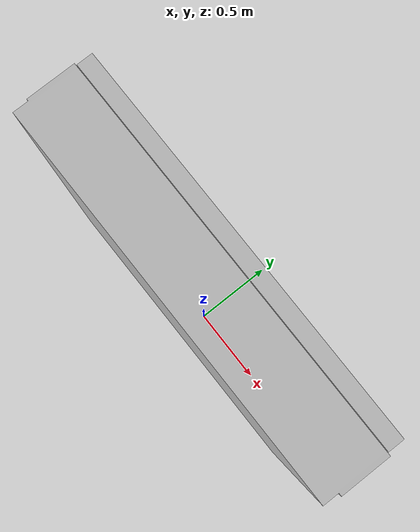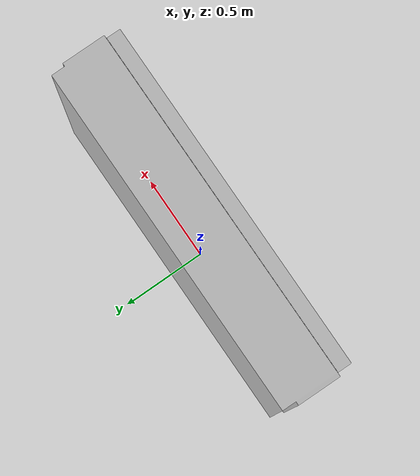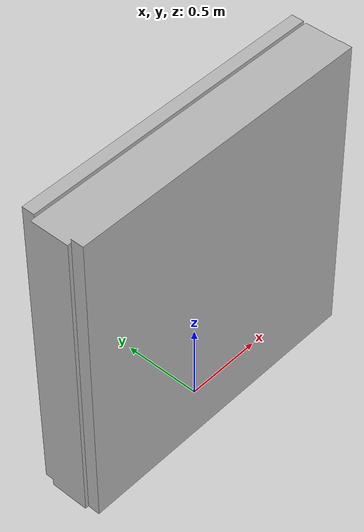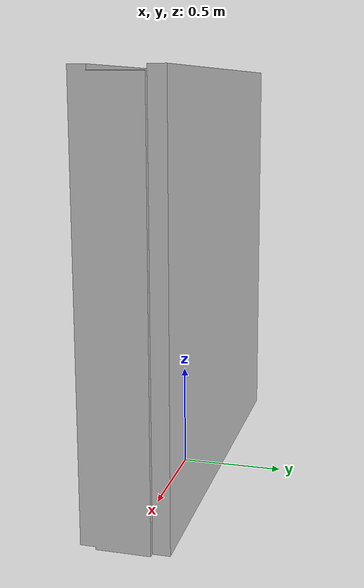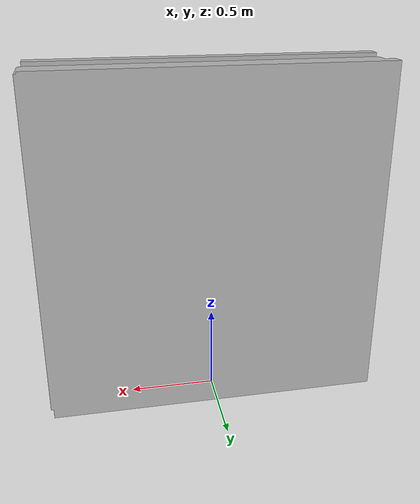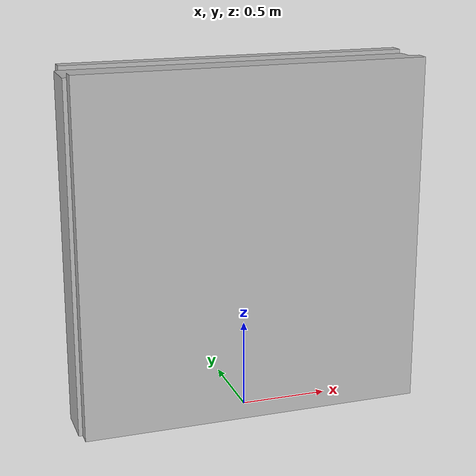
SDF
<?xml version="1.0" ?>
<sdf version="1.5">
  <model name='concretewall'>
    <pose>0 0 0 0 0 0</pose>
    <static>1</static>
    <link name='body'>
      <collision name="concretewall1">
        <pose>0 0 1 0 0 0</pose>
        <geometry>
          <box>
            <size>2 0.4 2.0</size>
          </box>
        </geometry>
      </collision>
      <visual name='concretewall1'>
        <cast_shadows>1</cast_shadows>
        <geometry>
          <mesh>
            <uri>model://concretewall1/meshes/concretewall1.dae</uri>
          </mesh>
        </geometry>
      </visual>
      <velocity_decay>
        <linear>0</linear>
        <angular>0</angular>
      </velocity_decay>
      <self_collide>0</self_collide>
      <kinematic>0</kinematic>
      <gravity>1</gravity>
    </link>
  </model>
</sdf>
